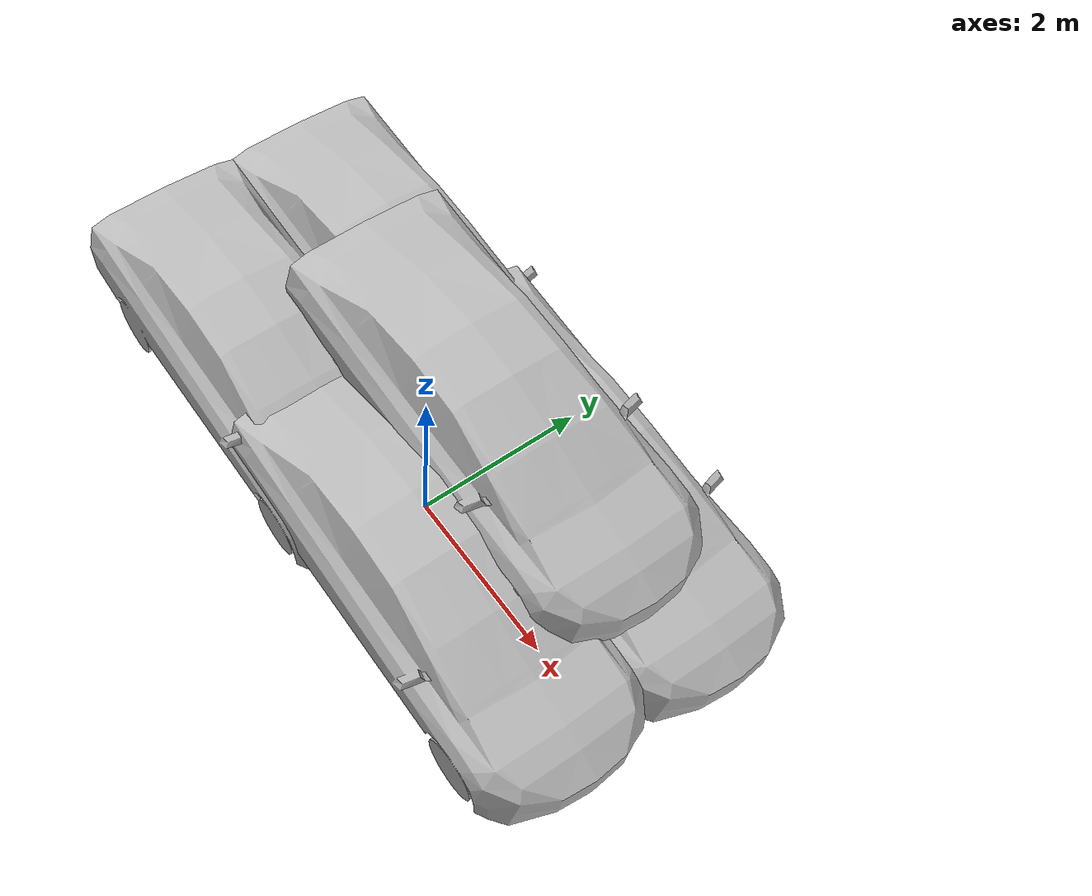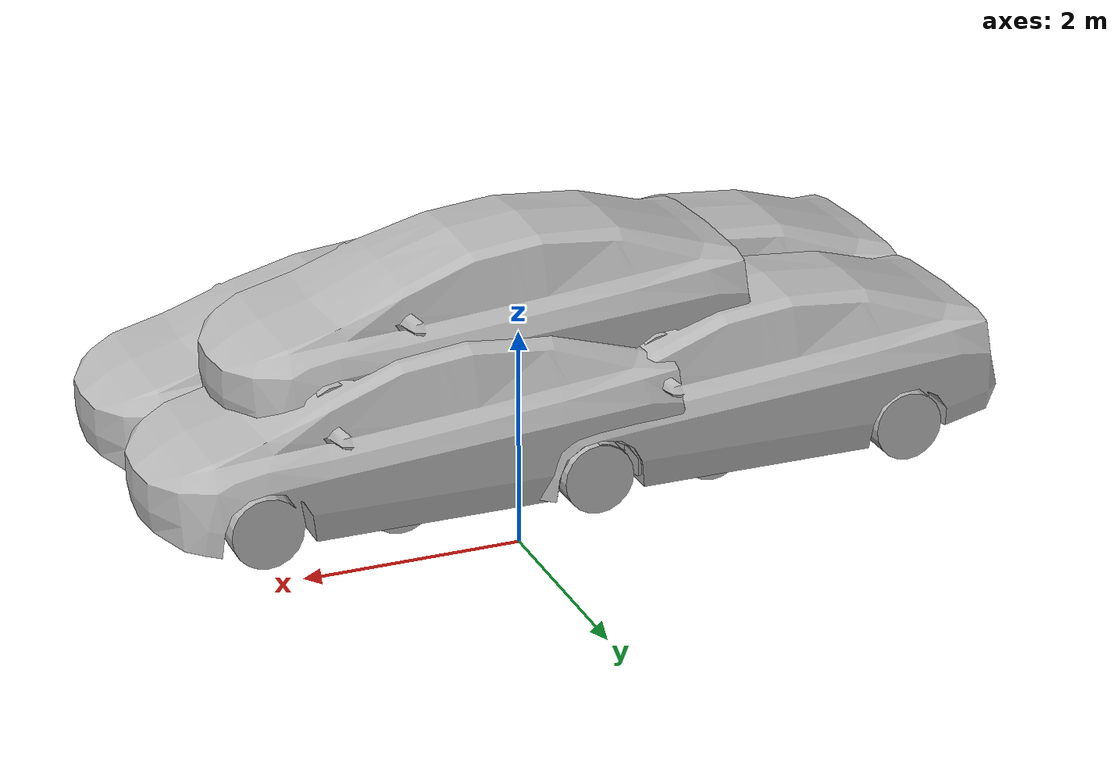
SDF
<sdf version="1.6">
 <world name="default">
  <scene>
   <grid>false</grid>
   <origin_visual>false</origin_visual>
   <ambient>0.85 0.85 0.85 1</ambient>
   <sky><clouds><speed>12</speed></clouds></sky>
   <background>0.35 0.35 0.35 1.0</background>
  </scene>
  <physics name="default_physics" default="0" type="ode">
   <max_step_size>0.001</max_step_size>
   <real_time_factor>1</real_time_factor>
   <real_time_update_rate>1000</real_time_update_rate>
  </physics>
  <light type="directional" name="sun">
   <pose>0 0 1000 0 0 0</pose>
   <diffuse>0.8 0.8 0.8 1</diffuse>
   <specular>0.5 0.5 0.5 1</specular>
   <attenuation>
    <range>1000</range>
    <constant>0.9</constant>
    <linear>0.01</linear>
    <quadratic>0.001</quadratic>
   </attenuation>
   <direction>-0.5 0.1 -0.4</direction>
  </light>
  <model name="upper_camera_satnav">
   <static>true</static>
   <pose>0 0 100 0 1.5708 0</pose>
   <link name="upper_camera_link">
    <sensor name="upper_camera" type="camera">
     <always_on>true</always_on>
     <visualize>true</visualize>
     <update_rate>15</update_rate>
     <camera>
      <horizontal_fov>1.20</horizontal_fov>
      <image><width>720</width><height>1280</height><format>R8G8B8</format></image>
      <clip><near>0.1</near><far>200</far></clip>
     </camera>
     <plugin name="upper_camera_controller" filename="libgazebo_ros_camera.so">
      <frame_name>upper_camera_link</frame_name>
     </plugin>
    </sensor>
   </link>
  </model>
  <model name="ground_plane">
   <static>true</static>
   <link name="link">
    <collision name="collision">
     <geometry><plane><normal>0 0 1</normal><size>100 100</size></plane></geometry>
     <surface><friction><ode><mu>100</mu><mu2>50</mu2></ode></friction></surface>
    </collision>
   </link>
  </model>
  <model name="asphalt_plane_74">
   <static>true</static>
   <pose>61.581
    -16.664
    0
    0
    0
    0</pose>
   <link name="link">
    <visual name="visual">
     <geometry><box><size>20
            20
            0.05</size></box></geometry>
     <material>
      <script>
       <uri>model://asphalt_plane/materials/scripts</uri>
       <uri>model://asphalt_plane/materials/textures</uri>
       <name>vrc/asphalt</name>
      </script>
     </material>
    </visual>
   </link>
  </model>
  <include><uri>model://prius_hybrid_vlp16</uri><pose>0 0 0.75 0 0 1.57</pose></include>
 </world>
</sdf>

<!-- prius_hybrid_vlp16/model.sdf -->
<sdf version="1.6">
  <model name="prius_hybrid_vlp16">
    <pose>0 0 0.03 0 0 0</pose>
    <link name="chassis">
      <inertial>
        <mass>1326.0</mass>
        <pose>0 -0.266 0.48 0 0 0</pose>
        <inertia>
          <ixx>2581.13354740</ixx>
          <ixy>0.0</ixy>
          <iyy>591.30846112</iyy>
          <ixz>0.0</ixz>
          <iyz>0.0</iyz>
          <izz>2681.95008628</izz>
        </inertia>
      </inertial>

      <visual name="chassis_visual">
        <geometry>
          <mesh>
            <uri>model://prius_hybrid/meshes/Hybrid.obj</uri>
            <scale>0.01 0.01 0.01</scale>
            <submesh>
              <name>Hybrid</name>
              <center>false</center>
            </submesh>
          </mesh>
        </geometry>
      </visual>

      <visual name="interior_visual">
        <geometry>
          <mesh>
            <uri>model://prius_hybrid/meshes/Hybrid.obj</uri>
            <scale>0.01 0.01 0.01</scale>
            <submesh>
              <name>Hybrid_Interior</name>
              <center>false</center>
            </submesh>
          </mesh>
        </geometry>
      </visual>

      <visual name="windows_visual">
        <geometry>
          <mesh>
            <uri>model://prius_hybrid/meshes/Hybrid.obj</uri>
            <scale>0.01 0.01 0.01</scale>
            <submesh>
              <name>Hybrid_Windows</name>
              <center>false</center>
            </submesh>
          </mesh>
        </geometry>
      </visual>

      <collision name="chassis">
        <pose>0.0 0.05 0.625 0 0 0</pose>
        <geometry>
          <box>
            <size>1.7526 2.1 0.95</size>
          </box>
        </geometry>
      </collision>

      <collision name="front_bumper">
        <pose>0.0 -2.0 0.458488 0.0 0 0</pose>
        <geometry>
          <box>
            <size>1.337282 0.48 0.566691</size>
          </box>
        </geometry>
      </collision>

      <collision name="hood">
        <pose>0.0 -1.900842 0.676305 0.341247 0 0</pose>
        <geometry>
          <box>
            <size>1.597968 0.493107 0.265468</size>
          </box>
        </geometry>
      </collision>

      <collision name="windshield">
        <pose>0.0 -0.875105 1.032268 0.335476 0 0</pose>
        <geometry>
          <box>
            <size>1.168381 1.654253 0.272347</size>
          </box>
        </geometry>
      </collision>

      <collision name="top_front">
        <pose>0.0 0.161236 1.386042 0.135030 0 0</pose>
        <geometry>
          <box>
            <size>1.279154 0.625988 0.171868</size>
          </box>
        </geometry>
      </collision>

      <collision name="top_rear">
        <pose>0.0 0.817696 1.360069 -0.068997 0 0</pose>
        <geometry>
          <box>
            <size>1.285130 0.771189 0.226557</size>
          </box>
        </geometry>
      </collision>

      <collision name="rear_window">
        <pose>0.0 1.640531 1.175126 -0.262017 0 0</pose>
        <geometry>
          <box>
            <size>1.267845 1.116344 0.244286</size>
          </box>
        </geometry>
      </collision>

      <collision name="trunk">
        <pose>0.0 1.637059 0.888180 0.0 0 0</pose>
        <geometry>
          <box>
            <size>1.788064 1.138988 0.482746</size>
          </box>
        </geometry>
      </collision>

      <collision name="back_bumper">
        <pose>0.0 2.054454 0.577870 0.0 0 0</pose>
        <geometry>
          <box>
            <size>1.781650 0.512093 0.581427</size>
          </box>
        </geometry>
      </collision>
    </link>

    <link name="steering_wheel">
      <pose>0.357734 -0.627868 0.988243 -1.302101 0 0</pose>
      <inertial>
        <mass>1.0</mass>
        <inertia>
          <ixx>0.14583300</ixx>
          <ixy>0</ixy>
          <ixz>0</ixz>
          <iyy>0.14583300</iyy>
          <iyz>0</iyz>
          <izz>0.12500000</izz>
        </inertia>
      </inertial>
      <collision name="collision">
        <geometry>
          <cylinder>
            <radius>0.178172</radius>
            <length>0.041845</length>
          </cylinder>
        </geometry>
        <surface>
          <contact>
            <ode>
              <min_depth>0.003</min_depth>
            </ode>
          </contact>
        </surface>
      </collision>
      <visual name="visual">
        <pose>0 0 0 1.302101 0 0</pose>
        <geometry>
          <mesh>
            <uri>model://prius_hybrid/meshes/Hybrid.obj</uri>
            <scale>0.01 0.01 0.01</scale>
            <submesh>
              <name>Steering_Wheel</name>
              <center>true</center>
            </submesh>
          </mesh>
        </geometry>
      </visual>
    </link>

    <link name="front_left_wheel">
      <pose>0.76 -1.41 0.3 0 0 0</pose>
      <inertial>
        <mass>11</mass>
        <inertia>
          <ixx>0.58631238</ixx>
          <ixy>0.0</ixy>
          <iyy>0.33552910</iyy>
          <ixz>0.0</ixz>
          <iyz>0.0</iyz>
          <izz>0.33552910</izz>
        </inertia>
      </inertial>

      <visual name="visual">
        <pose>0.04 0.0 0.0 0 0 0</pose>
        <geometry>
          <mesh>
            <uri>model://prius_hybrid/meshes/Hybrid.obj</uri>
            <scale>0.01 0.01 0.01</scale>
            <submesh>
              <name>Wheel_Front_Left_</name>
              <center>true</center>
            </submesh>
          </mesh>
        </geometry>
      </visual>

      <collision name="collision">
        <pose>0.0 0.0 0.0 0 1.5707963267948966 0</pose>
        <geometry>
          <sphere>
            <radius>0.31265</radius>
          </sphere>
        </geometry>
        <surface>
          <friction>
            <ode>
              <mu>0.9</mu>
              <mu2>0.9</mu2>
              <slip1>0.0</slip1>
              <slip2>0.0</slip2>
            </ode>
          </friction>
          <contact>
            <ode>
              <min_depth>0.001</min_depth>
              <kp>1e9</kp>
            </ode>
          </contact>
        </surface>

      </collision>
    </link>

    <link name="front_right_wheel">
      <pose>-0.76 -1.41 0.3 0 0 0</pose>
      <inertial>
        <mass>11</mass>
        <inertia>
          <ixx>0.58631238</ixx>
          <ixy>0.0</ixy>
          <iyy>0.33552910</iyy>
          <ixz>0.0</ixz>
          <iyz>0.0</iyz>
          <izz>0.33552910</izz>
        </inertia>
      </inertial>
      <visual name="visual">
        <pose>-0.04 0.0 0.0 0 0 0</pose>
        <pose>0 0 0.0 0 0 0</pose>
        <geometry>
          <mesh>
            <uri>model://prius_hybrid/meshes/Hybrid.obj</uri>
            <scale>0.01 0.01 0.01</scale>
            <submesh>
              <name>Wheel_Front_Right</name>
              <center>true</center>
            </submesh>
          </mesh>
        </geometry>
      </visual>

      <collision name="collision">
        <pose>0.0 0.0 0.0 0 1.5707963267948966 0</pose>
        <geometry>
          <sphere>
            <radius>0.31265</radius>
          </sphere>
        </geometry>
        <surface>
          <friction>
            <ode>
              <mu>0.9</mu>
              <mu2>0.9</mu2>
              <slip1>0.0</slip1>
              <slip2>0.0</slip2>
            </ode>
          </friction>
          <contact>
            <ode>
              <min_depth>0.001</min_depth>
              <kp>1e9</kp>
            </ode>
          </contact>
        </surface>

      </collision>
    </link>

    <link name="rear_left_wheel">
      <pose>0.786 1.45 0.3 0 0 0</pose>
      <inertial>
        <mass>11</mass>
        <inertia>
          <ixx>0.58631238</ixx>
          <ixy>0.0</ixy>
          <iyy>0.33552910</iyy>
          <ixz>0.0</ixz>
          <iyz>0.0</iyz>
          <izz>0.33552910</izz>
        </inertia>
      </inertial>

      <visual name="visual">
        <pose>0.04 0.0 0.0 0 0 0</pose>
        <geometry>
          <mesh>
            <uri>model://prius_hybrid/meshes/Hybrid.obj</uri>
            <scale>0.01 0.01 0.01</scale>
            <submesh>
              <name>Wheel_Front_Left_</name>
              <center>true</center>
            </submesh>
          </mesh>
        </geometry>
      </visual>

      <collision name="collision">
        <pose>0.0 0.0 0.0 0 1.5707963267948966 0</pose>
        <geometry>
          <sphere>
            <radius>0.31265</radius>
          </sphere>
        </geometry>
        <surface>
          <friction>
            <ode>
              <mu>1.1</mu>
              <mu2>1.1</mu2>
              <slip1>0.0</slip1>
              <slip2>0.0</slip2>
            </ode>
          </friction>
          <contact>
            <ode>
              <min_depth>0.001</min_depth>
              <kp>1e9</kp>
            </ode>
          </contact>
        </surface>

      </collision>
    </link>

    <link name="rear_right_wheel">
      <pose>-0.786 1.45 0.3 0 0 0</pose>
      <inertial>
        <mass>11</mass>
        <inertia>
          <ixx>0.58631238</ixx>
          <ixy>0.0</ixy>
          <iyy>0.33552910</iyy>
          <ixz>0.0</ixz>
          <iyz>0.0</iyz>
          <izz>0.33552910</izz>
        </inertia>
      </inertial>
      <visual name="visual">
        <pose>-0.04 0.0 0.0 0 0 0</pose>
        <geometry>
          <mesh>
            <uri>model://prius_hybrid/meshes/Hybrid.obj</uri>
            <scale>0.01 0.01 0.01</scale>
            <submesh>
              <name>Wheel_Front_Right</name>
              <center>true</center>
            </submesh>
          </mesh>
        </geometry>
      </visual>

      <collision name="collision">
        <pose>0.0 0.0 0.0 0 1.5707963267948966 0</pose>
        <geometry>
          <sphere>
            <radius>0.31265</radius>
          </sphere>
        </geometry>
        <surface>
          <friction>
            <ode>
              <mu>1.1</mu>
              <mu2>1.1</mu2>
              <slip1>0.0</slip1>
              <slip2>0.0</slip2>
            </ode>
          </friction>
          <contact>
            <ode>
              <min_depth>0.001</min_depth>
              <kp>1e9</kp>
            </ode>
          </contact>
        </surface>
      </collision>
    </link>

    <joint type="universal" name="front_left_combined_joint">
      <pose>0 0 0 -0.08726646259971647 0 0</pose>
      <child>front_left_wheel</child>
      <parent>chassis</parent>
      <axis>
        <xyz>0 0 1</xyz>
        <limit>
          <!-- +- 50 degrees -->
          <lower>-0.8727</lower>
          <upper>0.8727</upper>
        </limit>
      </axis>
      <axis2>
        <xyz>1 0 0</xyz>
        <dynamics>
          <friction>18.0474092253</friction>
        </dynamics>
      </axis2>
    </joint>

    <joint type="universal" name="front_right_combined_joint">
      <pose>0 0 0 -0.08726646259971647 0 0</pose>
      <child>front_right_wheel</child>
      <parent>chassis</parent>
      <axis>
        <xyz>0 0 1</xyz>
        <limit>
          <!-- +- 50 degrees -->
          <lower>-0.8727</lower>
          <upper>0.8727</upper>
        </limit>
      </axis>
      <axis2>
        <xyz>1 0 0</xyz>
        <dynamics>
          <friction>18.0474092253</friction>
        </dynamics>
      </axis2>
    </joint>

    <link name="rear_axle">
      <pose>0 1.45 0.3 0 0 0</pose>
      <inertial>
        <mass>30.0</mass>
        <inertia>
          <ixx>0.08437499999999999</ixx>
          <ixy>0.0</ixy>
          <iyy>4.64581</iyy>
          <ixz>0.0</ixz>
          <iyz>0.0</iyz>
          <izz>4.64581</izz>
        </inertia>
      </inertial>
      <visual name="visual">
        <pose>0.0 0.0 0.0 0 1.5707963267948966 0</pose>
        <geometry>
          <cylinder>
            <length>1.357</length>
            <radius>0.075</radius>
          </cylinder>
        </geometry>
        <material>
          <script>
            <name>Gazebo/Grey</name>
            <uri>file://media/materials/scripts/gazebo.material</uri>
          </script>
        </material>
      </visual>
    </link>

    <joint type="revolute" name="rear_axle_joint">
      <child>rear_axle</child>
      <parent>chassis</parent>
      <axis>
        <xyz>0 1 0</xyz>
        <limit>
          <lower>-0.05089058524173028</lower>
          <upper>0.05089058524173028</upper>
        </limit>
        <dynamics>
          <spring_stiffness>20000.0</spring_stiffness>
          <damping>2000.0</damping>
        </dynamics>
      </axis>
    </joint>
    <joint type="revolute" name="rear_left_wheel_joint">
      <child>rear_left_wheel</child>
      <parent>rear_axle</parent>
      <axis>
        <xyz>1 0 0</xyz>
        <dynamics>
          <friction>12.031606150200002</friction>
        </dynamics>
      </axis>
    </joint>
    <joint type="revolute" name="rear_right_wheel_joint">
      <child>rear_right_wheel</child>
      <parent>rear_axle</parent>
      <axis>
        <xyz>1 0 0</xyz>
        <dynamics>
          <friction>12.031606150200002</friction>
        </dynamics>
      </axis>
    </joint>

    <joint name="steering_joint" type="revolute">
      <pose>-0.002 0 0 0 0 0</pose>
      <parent>chassis</parent>
      <child>steering_wheel</child>
      <axis>
        <xyz>0 0.964095 0.265556</xyz>
        <limit>
          <lower>-7.85</lower>
          <upper>7.85</upper>
        </limit>
        <dynamics>
          <damping>1.0</damping>
        </dynamics>
        <use_parent_model_frame>true</use_parent_model_frame>
      </axis>
      <physics>
        <ode>
          <cfm_damping>1</cfm_damping>
        </ode>
      </physics>
    </joint>

<!-- Adding Ackerman Drive Plugin -->
    <plugin name='ackermann_drive' filename='libgazebo_ros_ackermann_drive.so'>
      <update_rate>100.0</update_rate>
      <front_left_joint>front_left_combined_joint</front_left_joint>
      <front_right_joint>front_right_combined_joint</front_right_joint>
      <rear_left_joint>rear_left_wheel_joint</rear_left_joint>
      <rear_right_joint>rear_right_wheel_joint</rear_right_joint>
      <left_steering_joint>front_left_combined_joint</left_steering_joint>
      <right_steering_joint>front_right_combined_joint</right_steering_joint>
      <steering_wheel_joint>steering_joint</steering_wheel_joint>
      <max_steer>0.6458</max_steer>
      <max_steering_angle>7.85</max_steering_angle>
      <max_speed>20</max_speed>
      <left_steering_pid_gain>1500 0 1</left_steering_pid_gain>
      <left_steering_i_range>0 0</left_steering_i_range>
      <right_steering_pid_gain>1500 0 1</right_steering_pid_gain>
      <right_steering_i_range>0 0</right_steering_i_range>
      <linear_velocity_pid_gain>1000 0 1</linear_velocity_pid_gain>
      <linear_velocity_i_range>0 0</linear_velocity_i_range>
      <publish_odom>1</publish_odom>
      <publish_odom_tf>1</publish_odom_tf>
      <publish_wheel_tf>1</publish_wheel_tf>
      <publish_distance>1</publish_distance>
      <odometry_frame>odom</odometry_frame>
      <robot_base_frame>chassis</robot_base_frame>
    </plugin>

<!-- Camera Sensor Addition -->
<link name='camera_frame'>
      <pose>0 -0.2 1.5 0 0.1 -1.57</pose>
      <sensor name='camera' type='camera'>
        <always_on>1</always_on>
        <visualize>false</visualize>
        <update_rate>30</update_rate>
        <camera name='prius_cam'>
          <horizontal_fov>1.0856</horizontal_fov>
          <image>
            <width>1280</width>
            <height>720</height>
            <format>R8G8B8</format>
          </image>
          <clip>
            <near>0.03</near>
            <far>100</far>
          </clip>
          <noise>
            <type>gaussian</type>
            <mean>0</mean>
            <stddev>0.007</stddev>
          </noise>
        </camera>
        <plugin name='camera_driver' filename='libgazebo_ros_camera.so'/>
      </sensor>
      <self_collide>0</self_collide>
      <enable_wind>0</enable_wind>
      <kinematic>0</kinematic>
    </link>

    <joint name='camera_joint' type='fixed'>
      <parent>chassis</parent>
      <child>camera_frame</child>
    </joint>

<!-- 3D LiDAR VLP-16 mounted on Prius roof -->
    <link name='velodyne'>
      <!-- Prius model axes: x=left/right, y=front/back, z=up.
           Mounted near center of roof. Adjust z if it intersects the roof. -->
      <pose>0 0.25 1.58 0 0 0</pose>
      <inertial>
        <mass>0.83</mass>
        <inertia>
          <ixx>0.000908059425</ixx>
          <ixy>0</ixy>
          <ixz>0</ixz>
          <iyy>0.000908059425</iyy>
          <iyz>0</iyz>
          <izz>0.0011049624</izz>
        </inertia>
      </inertial>
      <visual name='visual'>
        <geometry>
          <cylinder>
            <radius>0.05</radius>
            <length>0.04</length>
          </cylinder>
        </geometry>
        <material>
          <script>
            <uri>file://media/materials/scripts/gazebo.material</uri>
            <name>Gazebo/Black</name>
          </script>
        </material>
      </visual>
      <collision name='collision'>
        <geometry>
          <cylinder>
            <radius>0.0516</radius>
            <length>0.0717</length>
          </cylinder>
        </geometry>
      </collision>

      <sensor name='velodyne-VLP16' type='ray'>
        <always_on>true</always_on>
        <pose>0 0 0 0 0 0</pose>
        <visualize>false</visualize>
        <update_rate>5</update_rate>
        <ray>
          <scan>
            <horizontal>
              <samples>720</samples>
              <resolution>1</resolution>
              <min_angle>-3.1415926535897931</min_angle>
              <max_angle>3.1415926535897931</max_angle>
            </horizontal>
            <vertical>
              <samples>16</samples>
              <resolution>1</resolution>
              <min_angle>-0.2617993877991494</min_angle>
              <max_angle>0.2617993877991494</max_angle>
            </vertical>
          </scan>
          <range>
            <min>0.055</min>
            <max>80.0</max>
            <resolution>0.001</resolution>
          </range>
          <noise>
            <type>gaussian</type>
            <mean>0.0</mean>
            <stddev>0.0</stddev>
          </noise>
        </ray>
        <plugin name='gazebo_ros_laser_controller' filename='libgazebo_ros_velodyne_laser.so'>
          <topicName>/points_raw</topicName>
          <frameName>velodyne</frameName>
          <min_range>0.9</min_range>
          <max_range>80.0</max_range>
          <gaussianNoise>0.008</gaussianNoise>
        </plugin>
      </sensor>
    </link>

    <joint name='velodyne_joint' type='fixed'>
      <parent>chassis</parent>
      <child>velodyne</child>
    </joint>

  </model>

</sdf>
